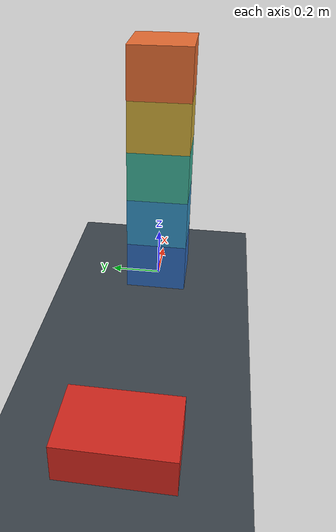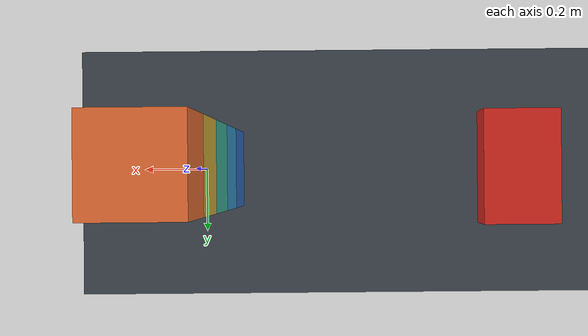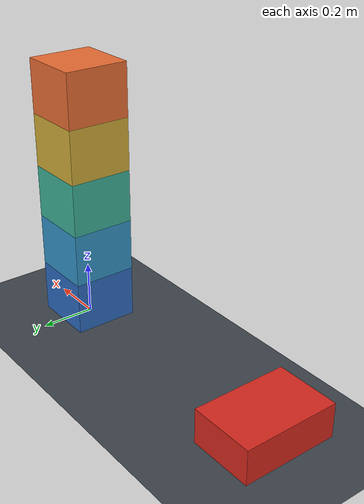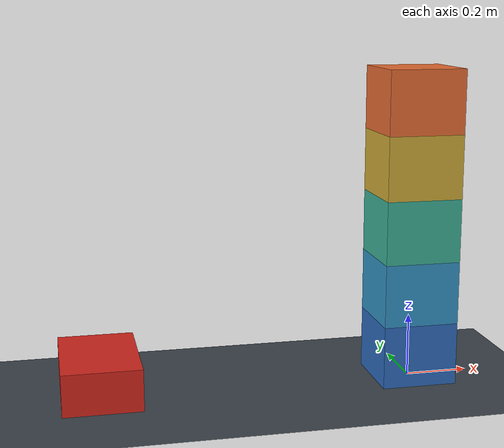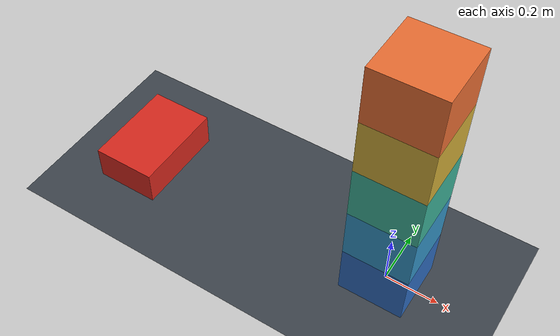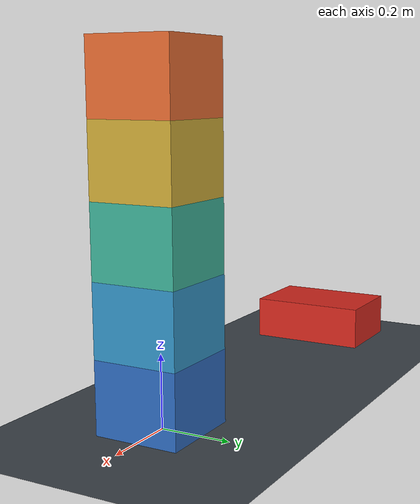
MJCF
<mujoco model="five_block_stack">
  <compiler angle="radian" autolimits="true"/>
  <option timestep="0.002" gravity="0 0 -9.81" integrator="implicitfast" solver="Newton" iterations="100" cone="elliptic"/>

  <visual>
    <headlight ambient="0.35 0.35 0.35" diffuse="0.7 0.7 0.7" specular="0.2 0.2 0.2"/>
  </visual>

  <worldbody>
    <light name="main_light" pos="-2 -3 5" dir="0.3 0.4 -1" directional="true"/>
    <camera name="overview" pos="2.6 -4.2 2.4" xyaxes="0.850 0.526 0 -0.230 0.372 0.899"/>
    <geom name="floor" type="plane" size="5 5 0.1" friction="0.65 0.005 0.0001" solref="0.01 1" rgba="0.24 0.27 0.30 1"/>

    <!-- The pusher coasts toward the stack, contacting only block1 after roughly half a second. -->
    <body name="pusher" pos="-1 0 0.08">
      <joint name="pusher_slide" type="slide" axis="1 0 0" limited="false" damping="8"/>
      <geom name="pusher_geom" type="box" size="0.12 0.18 0.065" mass="8" friction="0.65 0.005 0.0001" solref="0.01 1" rgba="0.85 0.16 0.12 1"/>
    </body>

    <body name="block1" pos="0 0 0.10">
      <freejoint name="block1_free"/>
      <geom name="block1_geom" type="box" size="0.12 0.12 0.10" mass="0.7" friction="0.65 0.005 0.0001" solref="0.01 1" rgba="0.18 0.42 0.75 1"/>
    </body>

    <body name="block2" pos="0 0 0.30">
      <freejoint name="block2_free"/>
      <geom name="block2_geom" type="box" size="0.12 0.12 0.10" mass="0.7" friction="0.65 0.005 0.0001" solref="0.01 1" rgba="0.20 0.58 0.78 1"/>
    </body>

    <body name="block3" pos="0 0 0.50">
      <freejoint name="block3_free"/>
      <geom name="block3_geom" type="box" size="0.12 0.12 0.10" mass="0.7" friction="0.65 0.005 0.0001" solref="0.01 1" rgba="0.24 0.70 0.60 1"/>
    </body>

    <body name="block4" pos="0 0 0.70">
      <freejoint name="block4_free"/>
      <geom name="block4_geom" type="box" size="0.12 0.12 0.10" mass="0.7" friction="0.65 0.005 0.0001" solref="0.01 1" rgba="0.82 0.68 0.22 1"/>
    </body>

    <body name="block5" pos="0 0 0.90">
      <freejoint name="block5_free"/>
      <geom name="block5_geom" type="box" size="0.12 0.12 0.10" mass="0.7" friction="0.65 0.005 0.0001" solref="0.01 1" rgba="0.92 0.43 0.20 1"/>
    </body>
  </worldbody>

  <keyframe>
    <!-- One slider velocity followed by six zero velocities for each of the five blocks. -->
    <key name="start" qvel="2 0 0 0 0 0 0 0 0 0 0 0 0 0 0 0 0 0 0 0 0 0 0 0 0 0 0 0 0 0 0"/>
  </keyframe>
</mujoco>
